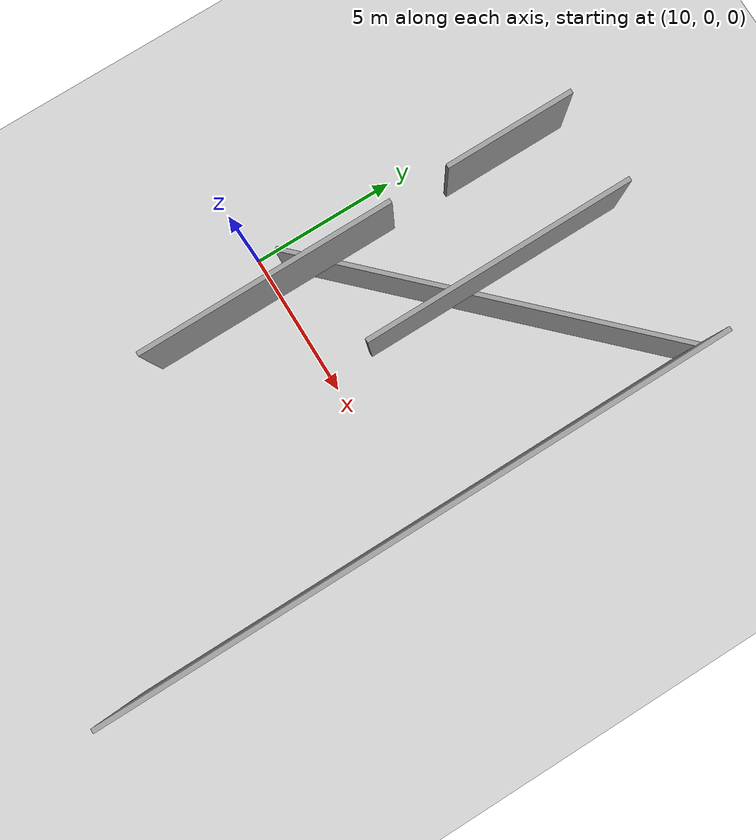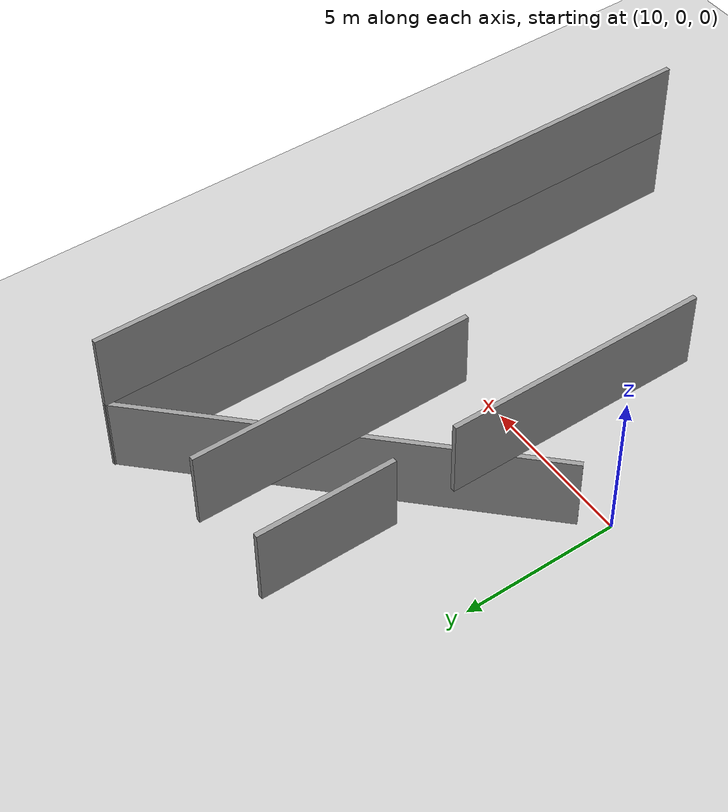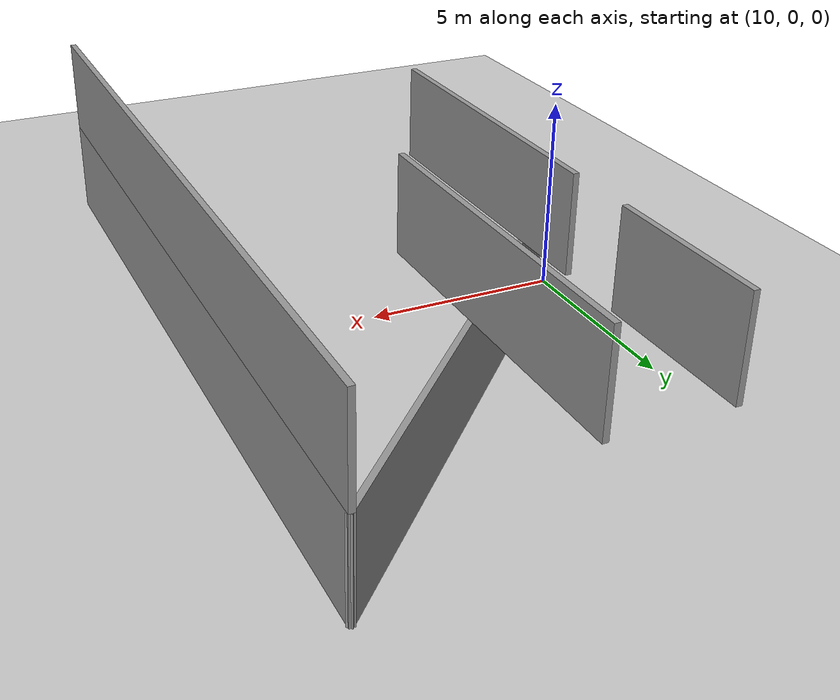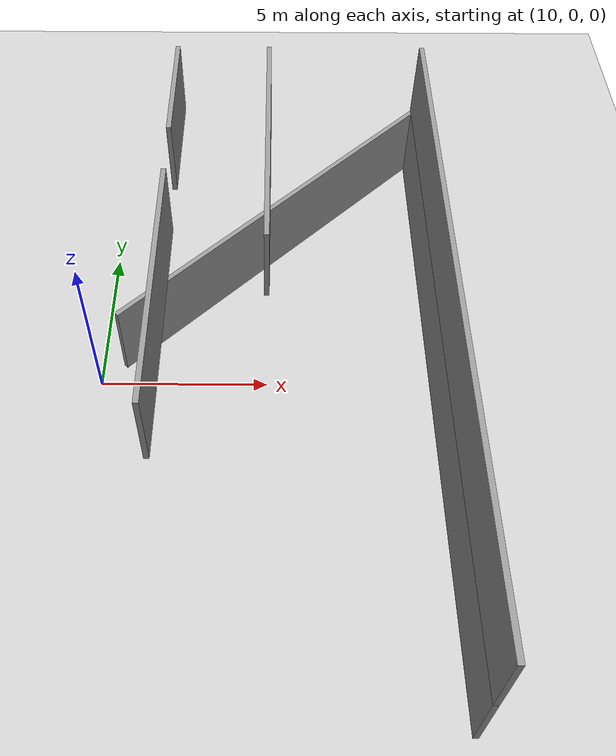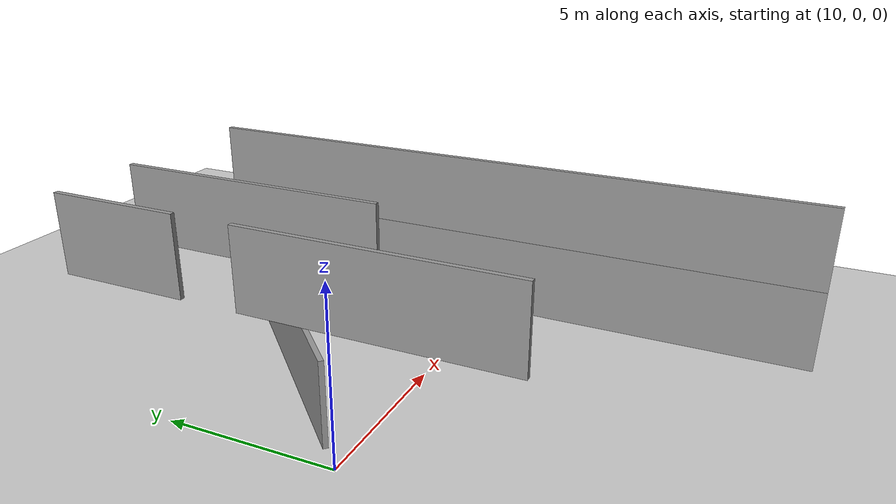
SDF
<sdf version="1.7">
 <world name="me5413_obstacle_world">
  <model name="ground_plane">
   <static>1</static>
   <link name="link">
    <collision name="collision">
     <geometry><plane><normal>0 0 1</normal><size>100 100</size></plane></geometry>
     <surface>
      <contact><collide_bitmask>65535</collide_bitmask></contact>
      <friction><ode><mu>100</mu><mu2>50</mu2></ode></friction>
     </surface>
    </collision>
    <visual name="visual">
     <cast_shadows>0</cast_shadows>
     <geometry><plane><normal>0 0 1</normal><size>100 100</size></plane></geometry>
     <material>
      <script><uri>file://media/materials/scripts/gazebo.material</uri><name>Gazebo/Grey</name></script>
     </material>
    </visual>
   </link>
  </model>
  <model name="smart_house_3_0">
   <link name="Wall_141">
    <pose>17.8529 6.85292 0 0 0 -2.35619</pose>
    <inertial>
     <inertia><ixx>1</ixx><ixy>0</ixy><ixz>0</ixz><iyy>1</iyy><iyz>0</iyz><izz>1</izz></inertia>
     <mass>1</mass>
    </inertial>
    <visual name="Wall_141_Visual">
     <pose>0 0 1.25 0 -0 0</pose>
     <geometry><box><size>13.25 0.15 2.5</size></box></geometry>
     <material>
      <script><uri>file://media/materials/scripts/gazebo.material</uri><name>Gazebo/Grey</name></script>
      <ambient>1 1 1 1</ambient>
      <shader type="pixel"/>
     </material>
     <meta><layer>0</layer></meta>
    </visual>
    <collision name="Wall_141_Collision">
     <pose>0 0 1.25 0 -0 0</pose>
     <geometry><box><size>13.25 0.15 2.5</size></box></geometry>
     <surface>
      <friction>
       <ode><mu>1</mu><mu2>1</mu2><fdir1>0 0 0</fdir1><slip1>0</slip1><slip2>0</slip2></ode>
       <torsional>
        <coefficient>1</coefficient>
        <patch_radius>0</patch_radius>
        <surface_radius>0</surface_radius>
        <use_patch_radius>1</use_patch_radius>
        <ode><slip>0</slip></ode>
       </torsional>
      </friction>
      <bounce><restitution_coefficient>0</restitution_coefficient><threshold>1e+06</threshold></bounce>
      <contact>
       <collide_without_contact>0</collide_without_contact>
       <collide_without_contact_bitmask>1</collide_without_contact_bitmask>
       <collide_bitmask>1</collide_bitmask>
       <ode>
        <soft_cfm>0</soft_cfm>
        <soft_erp>0.2</soft_erp>
        <kp>1e+13</kp>
        <kd>1</kd>
        <max_vel>0.01</max_vel>
        <min_depth>0</min_depth>
       </ode>
       <bullet>
        <split_impulse>1</split_impulse>
        <split_impulse_penetration_threshold>-0.01</split_impulse_penetration_threshold>
        <soft_cfm>0</soft_cfm>
        <soft_erp>0.2</soft_erp>
        <kp>1e+13</kp>
        <kd>1</kd>
       </bullet>
      </contact>
     </surface>
    </collision>
   </link>
   <link name="Wall_19">
    <pose>22.4845 1.48447 0 0 -0 1.5708</pose>
    <inertial>
     <inertia><ixx>1</ixx><ixy>0</ixy><ixz>0</ixz><iyy>1</iyy><iyz>0</iyz><izz>1</izz></inertia>
     <mass>1</mass>
    </inertial>
    <visual name="Wall_19_Visual">
     <pose>0 0 1.25 0 -0 0</pose>
     <geometry><box><size>20.15 0.15 2.5</size></box></geometry>
     <material>
      <script><uri>file://media/materials/scripts/gazebo.material</uri><name>Gazebo/Grey</name></script>
      <ambient>1 1 1 1</ambient>
      <shader type="pixel"/>
     </material>
     <meta><layer>0</layer></meta>
    </visual>
    <collision name="Wall_19_Collision">
     <pose>0 0 1.25 0 -0 0</pose>
     <geometry><box><size>20.15 0.15 2.5</size></box></geometry>
     <surface>
      <friction>
       <ode><mu>1</mu><mu2>1</mu2><fdir1>0 0 0</fdir1><slip1>0</slip1><slip2>0</slip2></ode>
       <torsional>
        <coefficient>1</coefficient>
        <patch_radius>0</patch_radius>
        <surface_radius>0</surface_radius>
        <use_patch_radius>1</use_patch_radius>
        <ode><slip>0</slip></ode>
       </torsional>
      </friction>
      <bounce><restitution_coefficient>0</restitution_coefficient><threshold>1e+06</threshold></bounce>
      <contact>
       <collide_without_contact>0</collide_without_contact>
       <collide_without_contact_bitmask>1</collide_without_contact_bitmask>
       <collide_bitmask>1</collide_bitmask>
       <ode>
        <soft_cfm>0</soft_cfm>
        <soft_erp>0.2</soft_erp>
        <kp>1e+13</kp>
        <kd>1</kd>
        <max_vel>0.01</max_vel>
        <min_depth>0</min_depth>
       </ode>
       <bullet>
        <split_impulse>1</split_impulse>
        <split_impulse_penetration_threshold>-0.01</split_impulse_penetration_threshold>
        <soft_cfm>0</soft_cfm>
        <soft_erp>0.2</soft_erp>
        <kp>1e+13</kp>
        <kd>1</kd>
       </bullet>
      </contact>
     </surface>
    </collision>
   </link>
   <link name="Wall_237">
    <pose>22.4845 1.48447 2.5 0 -0 1.5708</pose>
    <inertial>
     <inertia><ixx>1</ixx><ixy>0</ixy><ixz>0</ixz><iyy>1</iyy><iyz>0</iyz><izz>1</izz></inertia>
     <mass>1</mass>
    </inertial>
    <visual name="Wall_237_Visual">
     <pose>0 0 1.25 0 -0 0</pose>
     <geometry><box><size>20.15 0.15 2.5</size></box></geometry>
     <material>
      <script><uri>file://media/materials/scripts/gazebo.material</uri><name>Gazebo/Grey</name></script>
      <ambient>1 1 1 1</ambient>
      <shader type="pixel"/>
     </material>
     <meta><layer>2</layer></meta>
    </visual>
    <collision name="Wall_237_Collision">
     <pose>0 0 1.25 0 -0 0</pose>
     <geometry><box><size>20.15 0.15 2.5</size></box></geometry>
     <surface>
      <friction>
       <ode><mu>1</mu><mu2>1</mu2><fdir1>0 0 0</fdir1><slip1>0</slip1><slip2>0</slip2></ode>
       <torsional>
        <coefficient>1</coefficient>
        <patch_radius>0</patch_radius>
        <surface_radius>0</surface_radius>
        <use_patch_radius>1</use_patch_radius>
        <ode><slip>0</slip></ode>
       </torsional>
      </friction>
      <bounce><restitution_coefficient>0</restitution_coefficient><threshold>1e+06</threshold></bounce>
      <contact>
       <collide_without_contact>0</collide_without_contact>
       <collide_without_contact_bitmask>1</collide_without_contact_bitmask>
       <collide_bitmask>1</collide_bitmask>
       <ode>
        <soft_cfm>0</soft_cfm>
        <soft_erp>0.2</soft_erp>
        <kp>1e+13</kp>
        <kd>1</kd>
        <max_vel>0.01</max_vel>
        <min_depth>0</min_depth>
       </ode>
       <bullet>
        <split_impulse>1</split_impulse>
        <split_impulse_penetration_threshold>-0.01</split_impulse_penetration_threshold>
        <soft_cfm>0</soft_cfm>
        <soft_erp>0.2</soft_erp>
        <kp>1e+13</kp>
        <kd>1</kd>
       </bullet>
      </contact>
     </surface>
    </collision>
   </link>
   <link name="Wall_278">
    <pose>17.4845 7.23447 2.5 0 -0 1.5708</pose>
    <inertial>
     <inertia><ixx>1</ixx><ixy>0</ixy><ixz>0</ixz><iyy>1</iyy><iyz>0</iyz><izz>1</izz></inertia>
     <mass>1</mass>
    </inertial>
    <visual name="Wall_278_Visual">
     <pose>0 0 1.25 0 -0 0</pose>
     <geometry><box><size>8.65 0.15 2.5</size></box></geometry>
     <material>
      <script><uri>file://media/materials/scripts/gazebo.material</uri><name>Gazebo/Grey</name></script>
      <ambient>1 1 1 1</ambient>
      <shader type="pixel"/>
     </material>
     <meta><layer>2</layer></meta>
    </visual>
    <collision name="Wall_278_Collision">
     <pose>0 0 1.25 0 -0 0</pose>
     <geometry><box><size>8.65 0.15 2.5</size></box></geometry>
     <surface>
      <friction>
       <ode><mu>1</mu><mu2>1</mu2><fdir1>0 0 0</fdir1><slip1>0</slip1><slip2>0</slip2></ode>
       <torsional>
        <coefficient>1</coefficient>
        <patch_radius>0</patch_radius>
        <surface_radius>0</surface_radius>
        <use_patch_radius>1</use_patch_radius>
        <ode><slip>0</slip></ode>
       </torsional>
      </friction>
      <bounce><restitution_coefficient>0</restitution_coefficient><threshold>1e+06</threshold></bounce>
      <contact>
       <collide_without_contact>0</collide_without_contact>
       <collide_without_contact_bitmask>1</collide_without_contact_bitmask>
       <collide_bitmask>1</collide_bitmask>
       <ode>
        <soft_cfm>0</soft_cfm>
        <soft_erp>0.2</soft_erp>
        <kp>1e+13</kp>
        <kd>1</kd>
        <max_vel>0.01</max_vel>
        <min_depth>0</min_depth>
       </ode>
       <bullet>
        <split_impulse>1</split_impulse>
        <split_impulse_penetration_threshold>-0.01</split_impulse_penetration_threshold>
        <soft_cfm>0</soft_cfm>
        <soft_erp>0.2</soft_erp>
        <kp>1e+13</kp>
        <kd>1</kd>
       </bullet>
      </contact>
     </surface>
    </collision>
   </link>
   <link name="Wall_282">
    <pose>14.4845 9.48447 2.5 0 0 -1.5708</pose>
    <inertial>
     <inertia><ixx>1</ixx><ixy>0</ixy><ixz>0</ixz><iyy>1</iyy><iyz>0</iyz><izz>1</izz></inertia>
     <mass>1</mass>
    </inertial>
    <visual name="Wall_282_Visual">
     <pose>0 0 1.25 0 -0 0</pose>
     <geometry><box><size>4.15 0.15 2.5</size></box></geometry>
     <material>
      <script><uri>file://media/materials/scripts/gazebo.material</uri><name>Gazebo/Grey</name></script>
      <ambient>1 1 1 1</ambient>
      <shader type="pixel"/>
     </material>
     <meta><layer>2</layer></meta>
    </visual>
    <collision name="Wall_282_Collision">
     <pose>0 0 1.25 0 -0 0</pose>
     <geometry><box><size>4.15 0.15 2.5</size></box></geometry>
     <surface>
      <friction>
       <ode><mu>1</mu><mu2>1</mu2><fdir1>0 0 0</fdir1><slip1>0</slip1><slip2>0</slip2></ode>
       <torsional>
        <coefficient>1</coefficient>
        <patch_radius>0</patch_radius>
        <surface_radius>0</surface_radius>
        <use_patch_radius>1</use_patch_radius>
        <ode><slip>0</slip></ode>
       </torsional>
      </friction>
      <bounce><restitution_coefficient>0</restitution_coefficient><threshold>1e+06</threshold></bounce>
      <contact>
       <collide_without_contact>0</collide_without_contact>
       <collide_without_contact_bitmask>1</collide_without_contact_bitmask>
       <collide_bitmask>1</collide_bitmask>
       <ode>
        <soft_cfm>0</soft_cfm>
        <soft_erp>0.2</soft_erp>
        <kp>1e+13</kp>
        <kd>1</kd>
        <max_vel>0.01</max_vel>
        <min_depth>0</min_depth>
       </ode>
       <bullet>
        <split_impulse>1</split_impulse>
        <split_impulse_penetration_threshold>-0.01</split_impulse_penetration_threshold>
        <soft_cfm>0</soft_cfm>
        <soft_erp>0.2</soft_erp>
        <kp>1e+13</kp>
        <kd>1</kd>
       </bullet>
      </contact>
     </surface>
    </collision>
   </link>
   <link name="Wall_286">
    <pose>14.4845 1.48447 2.5 0 0 -1.5708</pose>
    <inertial>
     <inertia><ixx>1</ixx><ixy>0</ixy><ixz>0</ixz><iyy>1</iyy><iyz>0</iyz><izz>1</izz></inertia>
     <mass>1</mass>
    </inertial>
    <visual name="Wall_286_Visual">
     <pose>0 0 1.25 0 -0 0</pose>
     <geometry><box><size>8.15 0.15 2.5</size></box></geometry>
     <material>
      <script><uri>file://media/materials/scripts/gazebo.material</uri><name>Gazebo/Grey</name></script>
      <ambient>1 1 1 1</ambient>
      <shader type="pixel"/>
     </material>
     <meta><layer>2</layer></meta>
    </visual>
    <collision name="Wall_286_Collision">
     <pose>0 0 1.25 0 -0 0</pose>
     <geometry><box><size>8.15 0.15 2.5</size></box></geometry>
     <surface>
      <friction>
       <ode><mu>1</mu><mu2>1</mu2><fdir1>0 0 0</fdir1><slip1>0</slip1><slip2>0</slip2></ode>
       <torsional>
        <coefficient>1</coefficient>
        <patch_radius>0</patch_radius>
        <surface_radius>0</surface_radius>
        <use_patch_radius>1</use_patch_radius>
        <ode><slip>0</slip></ode>
       </torsional>
      </friction>
      <bounce><restitution_coefficient>0</restitution_coefficient><threshold>1e+06</threshold></bounce>
      <contact>
       <collide_without_contact>0</collide_without_contact>
       <collide_without_contact_bitmask>1</collide_without_contact_bitmask>
       <collide_bitmask>1</collide_bitmask>
       <ode>
        <soft_cfm>0</soft_cfm>
        <soft_erp>0.2</soft_erp>
        <kp>1e+13</kp>
        <kd>1</kd>
        <max_vel>0.01</max_vel>
        <min_depth>0</min_depth>
       </ode>
       <bullet>
        <split_impulse>1</split_impulse>
        <split_impulse_penetration_threshold>-0.01</split_impulse_penetration_threshold>
        <soft_cfm>0</soft_cfm>
        <soft_erp>0.2</soft_erp>
        <kp>1e+13</kp>
        <kd>1</kd>
       </bullet>
      </contact>
     </surface>
    </collision>
   </link>
   <static>1</static>
   <pose>-2.5 -1.5 0 0 -0 0</pose>
  </model>
 </world>
</sdf>
